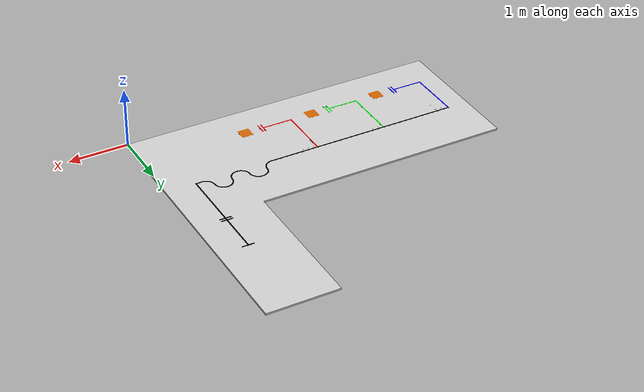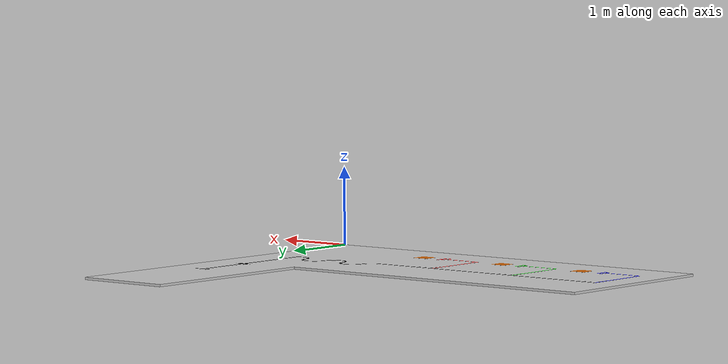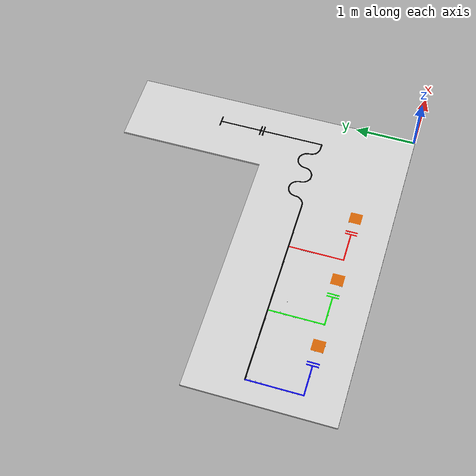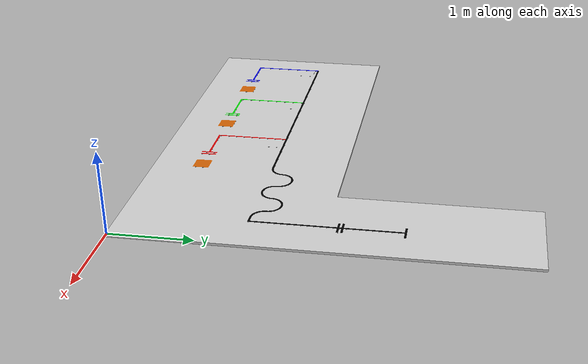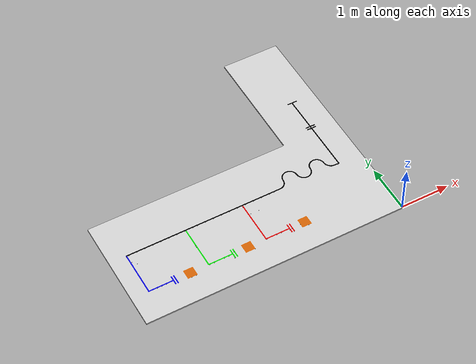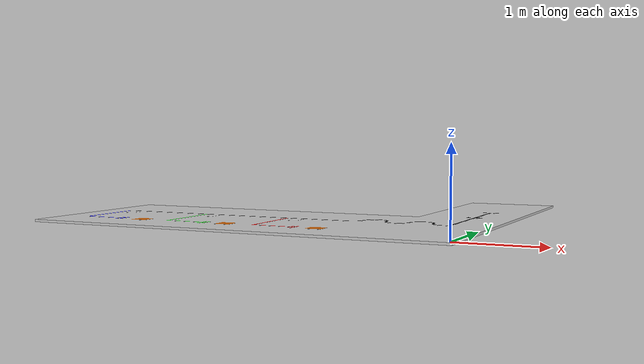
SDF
<?xml version='1.0'?>
<sdf version='1.7'>
  <model name='map'>
    <link name='link_0'>
      <inertial>
        <mass>100</mass>
        <inertia>
          <ixx>16.6667</ixx>
          <ixy>0</ixy>
          <ixz>0</ixz>
          <iyy>16.6667</iyy>
          <iyz>0</iyz>
          <izz>16.6667</izz>
        </inertia>
      </inertial>
      <pose>3e-06 -3e-06 0 0 -0 0</pose>
      <visual name='visual'>
        <pose>0 0 0 0 -0 0</pose>
        <geometry>
          <mesh>
            <uri>/home/robot_ws/src/robot_description/worlds/map.dae</uri>
            <scale>1 1 1</scale>
          </mesh>
        </geometry>
        <transparency>0</transparency>
        <cast_shadows>1</cast_shadows>
      </visual>
      <collision name='collision'>
        <laser_retro>0</laser_retro>
        <max_contacts>10</max_contacts>
        <pose>0 0 0 0 -0 0</pose>
        <geometry>
          <mesh>
            <uri>/home/robot_ws/src/robot_description/worlds/map.dae</uri>
            <scale>1 1 1</scale>
          </mesh>
        </geometry>
        <surface>
          <friction>
            <ode>
              <mu>1</mu>
              <mu2>1</mu2>
              <fdir1>0 0 0</fdir1>
              <slip1>0</slip1>
              <slip2>0</slip2>
            </ode>
          </friction>
        </surface>
      </collision>
    </link>
    <static>1</static>
    <allow_auto_disable>1</allow_auto_disable>
  </model>
</sdf>
